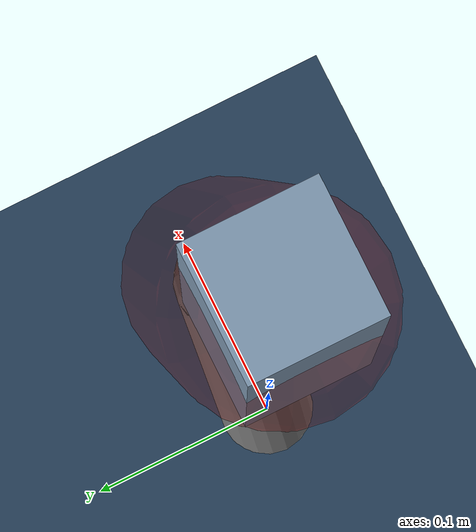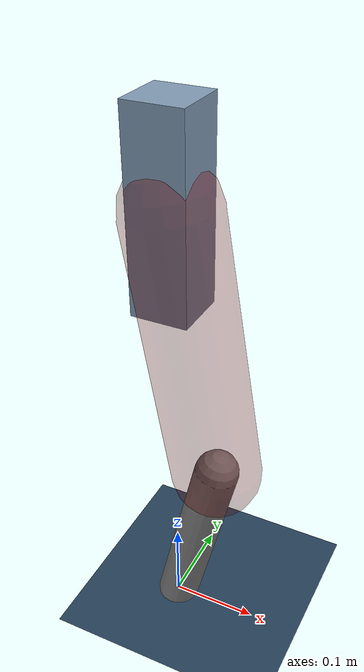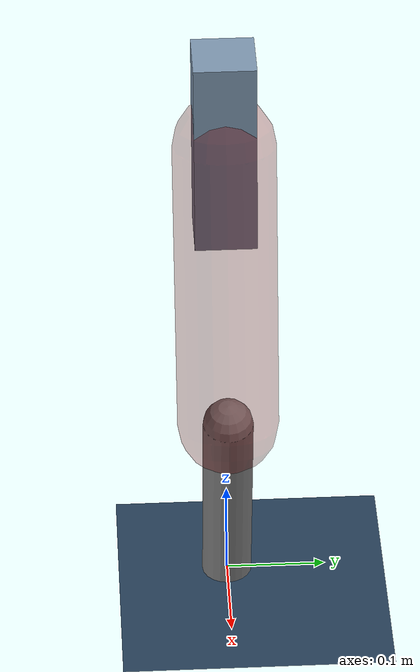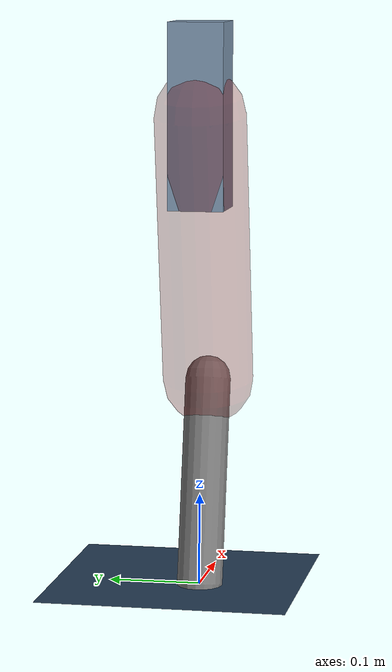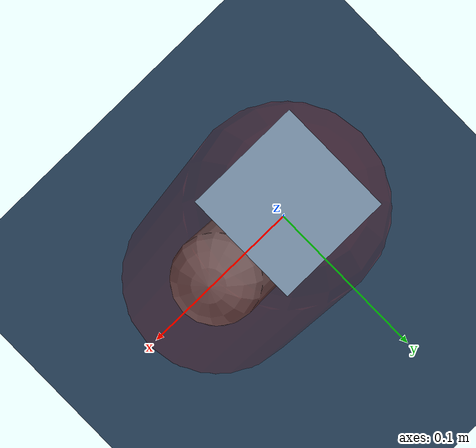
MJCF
<mujoco model="Hopper2D">
	<compiler inertiafromgeom="true" angle="radian" />
	<option timestep="0.001" integrator="implicit" cone="elliptic" solver="Newton" tolerance="1e-10" />

	<default>
		<geom contype="1" conaffinity="1" condim="3" friction="2 0.005 0.0001" solref="0.005 1" />
		<joint limited="true" damping="0.1" />
	</default>

	<asset>
		<texture name="skybox" type="skybox" builtin="gradient" rgb1=".4 .6 .8" rgb2="0 0 0" width="800" height="800" />
		<texture name="grid" type="2d" builtin="checker" rgb1=".1 .2 .3" rgb2=".2 .3 .4" width="300" height="300" mark="edge" markrgb=".2 .3 .4" />
		<material name="ground" texture="grid" texrepeat="1 1" texuniform="true" reflectance="0.1" />
		<material name="leg" rgba="0.5 0.6 0.7 1" />
	</asset>

	<worldbody>

		<geom name="floor" type="plane" size="5 5 0.25" material="ground" />

		<light directional="false" diffuse="0.8 0.8 0.8" specular="0.3 0.3 0.3" pos="0 0 2" dir="0 0 -1" />
		<light mode="targetbodycom" target="base" directional="false" diffuse="0.8 0.8 0.8" specular="0.3 0.3 0.3" pos="0 0 2" dir="0 0 -1" />

		<camera name="fixed" pos="0 -2 1" xyaxes="1 0 0 0 0 1" />
		<camera name="tracking" mode="trackcom" pos="0 -3 1" />

		<body name="root" pos="0 0 0.5126579856158202">
			<joint name="slide_x" type="slide" axis="1 0 0" range="-100 100" />
			<joint name="slide_z" type="slide" axis="0 0 1" range="0 10" />

			<body name="base" pos="0 0 0">
				<geom name="torso" type="box" size="0.03 0.03 0.1" mass="2.855" material="leg" />

				<body name="link1" pos="0 0 0" euler="0 1.4002701541589866 0">
					<joint type="hinge" axis="0 -1 0" pos="0 0 0" name="hinge1" limited="true" range="-3.14 3.14" stiffness="0" damping="0.1" />
					<geom name="thigh" type="capsule" fromto="0 0 0 0.2968938980709722 0 0" size="0.05" rgba="0.5 0 0 0.3" mass="0.980313524791625" />

					<body name="link2" pos="0.2968938980709722 0 0" euler="0 0.39558870401433976 0">
						<joint type="hinge" axis="0 -1 0" pos="0 0 0" name="hinge2" limited="true" range="-3.14 3.14" stiffness="0" damping="0.1" />
						<geom name="shank" type="capsule" fromto="0 0 0 0.22576408754484797 0 0" size="0.025" mass="0.4224876787903632" />

					</body>
				</body>
			</body>
		</body>
	</worldbody>

	<actuator>
		<motor name="torque1" joint="hinge1" ctrlrange="-139.81284115420388 139.81284115420388" ctrllimited="true" gear="1" />
		<motor name="torque2" joint="hinge2" ctrlrange="-64.48838764077671 64.48838764077671" ctrllimited="true" gear="1" />
	</actuator>
</mujoco>
